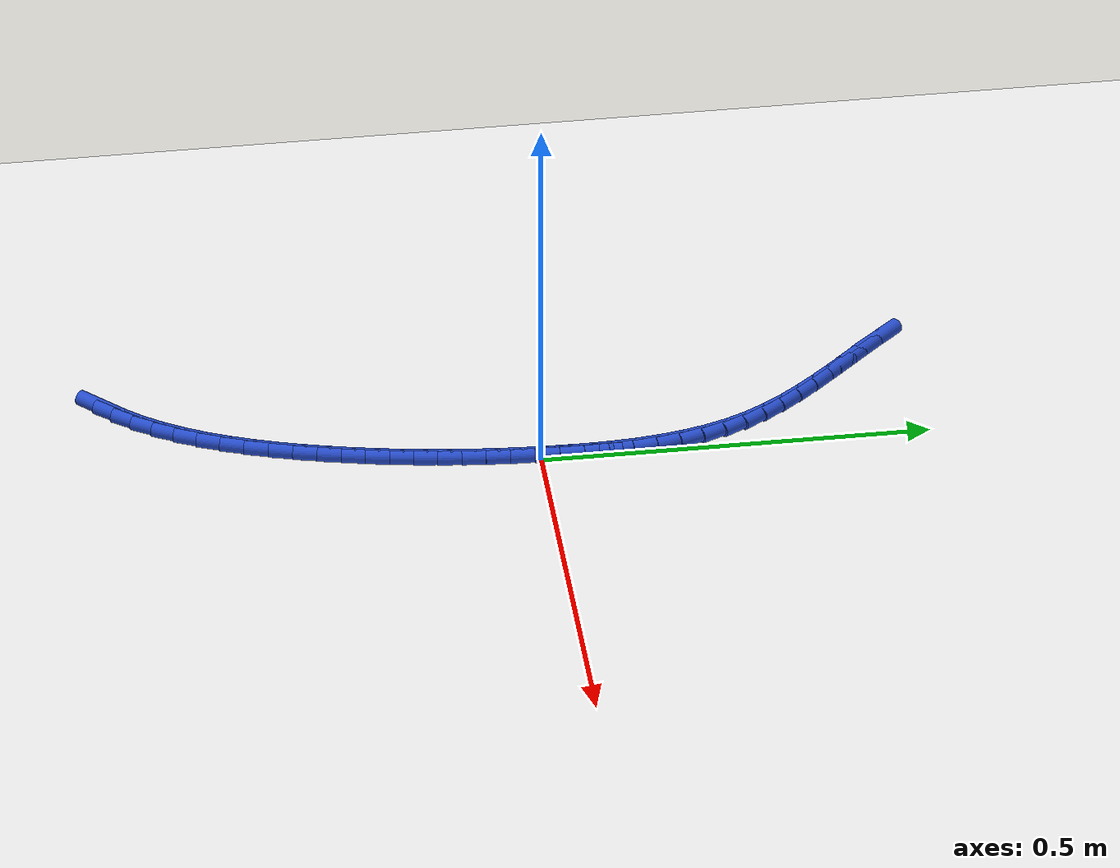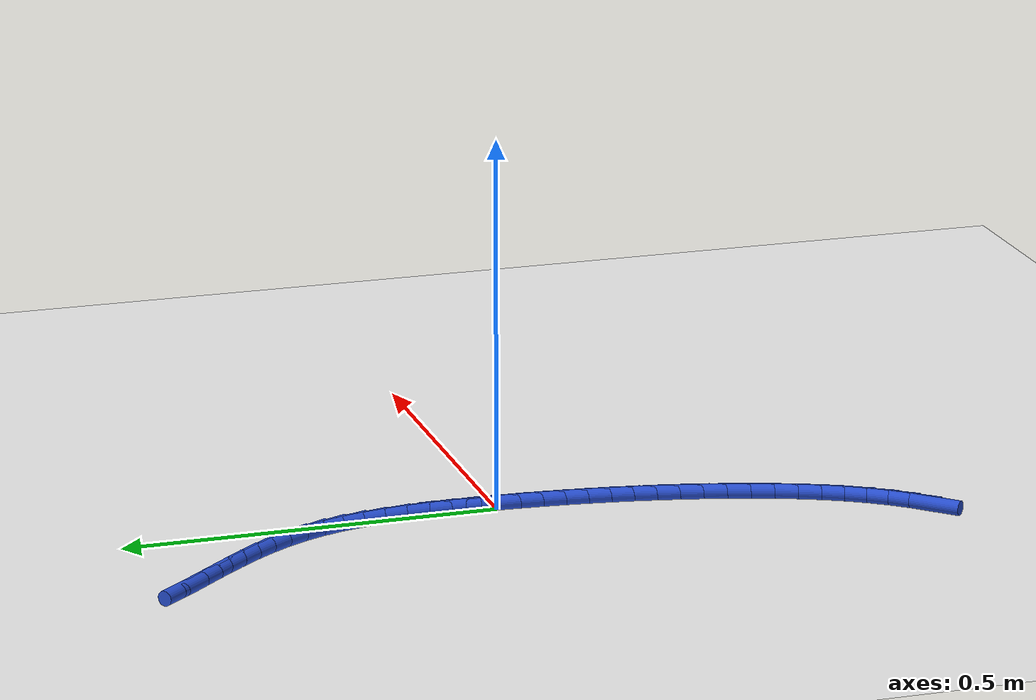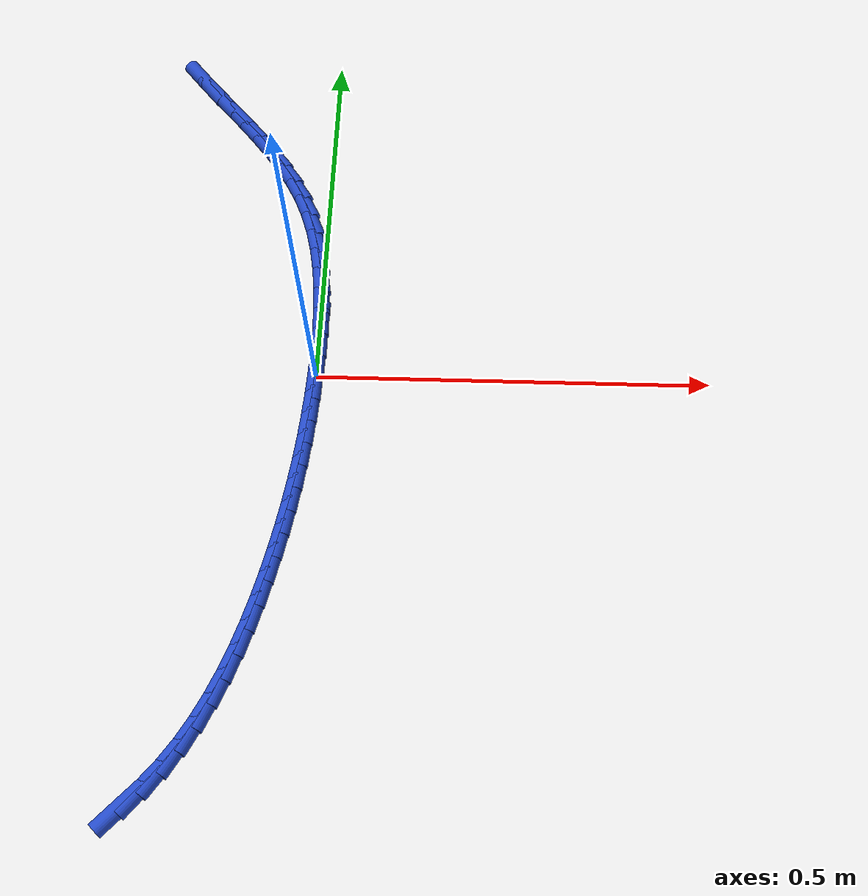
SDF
<sdf version="1.6">
 <world name="default">
  <model name="ground_plane">
   <static>1</static>
   <link name="link">
    <collision name="collision">
     <geometry><plane><normal>0 0 1</normal><size>100 100</size></plane></geometry>
     <surface><friction><ode><mu>100</mu><mu2>50</mu2></ode></friction></surface>
    </collision>
    <visual name="visual">
     <cast_shadows>0</cast_shadows>
     <geometry><plane><normal>0 0 1</normal><size>100 100</size></plane></geometry>
     <material>
      <script><uri>file://media/materials/scripts/gazebo.material</uri><name>Gazebo/WhiteGlow</name></script>
     </material>
    </visual>
   </link>
  </model>
  <model name="line">
   <link name="link_0">
    <pose>2.4936649967166602e-17 5.551115123125783e-17 0.01 0 1.57 1.5411175155558543</pose>
    <collision name="collision">
     <geometry><cylinder><radius>0.01</radius><length>0.08</length></cylinder></geometry>
    </collision>
    <visual name="visual">
     <material>
      <script><name>Gazebo/Blue</name><uri>file://media/materials/scripts/gazebo.material</uri></script>
     </material>
     <geometry><cylinder><radius>0.01</radius><length>0.08</length></cylinder></geometry>
    </visual>
   </link>
   <link name="link_1">
    <pose>0.0009247249539259656 0.03114860030866323 0.01 0 1.57 1.566804197083188</pose>
    <collision name="collision">
     <geometry><cylinder><radius>0.01</radius><length>0.08</length></cylinder></geometry>
    </collision>
    <visual name="visual">
     <material>
      <script><name>Gazebo/Blue</name><uri>file://media/materials/scripts/gazebo.material</uri></script>
     </material>
     <geometry><cylinder><radius>0.01</radius><length>0.08</length></cylinder></geometry>
    </visual>
   </link>
   <link name="link_2">
    <pose>0.0010497529973194828 0.062467066447506464 0.01 0 1.57 -1.541951702423499</pose>
    <collision name="collision">
     <geometry><cylinder><radius>0.01</radius><length>0.08</length></cylinder></geometry>
    </collision>
    <visual name="visual">
     <material>
      <script><name>Gazebo/Blue</name><uri>file://media/materials/scripts/gazebo.material</uri></script>
     </material>
     <geometry><cylinder><radius>0.01</radius><length>0.08</length></cylinder></geometry>
    </visual>
   </link>
   <link name="link_3">
    <pose>0.00014661214302193084 0.09376892546965007 0.01 0 1.57 -1.5014585749569875</pose>
    <collision name="collision">
     <geometry><cylinder><radius>0.01</radius><length>0.08</length></cylinder></geometry>
    </collision>
    <visual name="visual">
     <material>
      <script><name>Gazebo/Blue</name><uri>file://media/materials/scripts/gazebo.material</uri></script>
     </material>
     <geometry><cylinder><radius>0.01</radius><length>0.08</length></cylinder></geometry>
    </visual>
   </link>
   <link name="link_4">
    <pose>-0.002013169596125335 0.12486770442821435 0.01 0 1.57 -1.4526584714905681</pose>
    <collision name="collision">
     <geometry><cylinder><radius>0.01</radius><length>0.08</length></cylinder></geometry>
    </collision>
    <visual name="visual">
     <material>
      <script><name>Gazebo/Blue</name><uri>file://media/materials/scripts/gazebo.material</uri></script>
     </material>
     <geometry><cylinder><radius>0.01</radius><length>0.08</length></cylinder></geometry>
    </visual>
   </link>
   <link name="link_5">
    <pose>-0.005658064207280955 0.15557693037631962 0.01 0 1.57 -1.3948095371145166</pose>
    <collision name="collision">
     <geometry><cylinder><radius>0.01</radius><length>0.08</length></cylinder></geometry>
    </collision>
    <visual name="visual">
     <material>
      <script><name>Gazebo/Blue</name><uri>file://media/materials/scripts/gazebo.material</uri></script>
     </material>
     <geometry><cylinder><radius>0.01</radius><length>0.08</length></cylinder></geometry>
    </visual>
   </link>
   <link name="link_6">
    <pose>-0.011016543677603586 0.18571013036708628 0.01 0 1.57 -1.3271684506925083</pose>
    <collision name="collision">
     <geometry><cylinder><radius>0.01</radius><length>0.08</length></cylinder></geometry>
    </collision>
    <visual name="visual">
     <material>
      <script><name>Gazebo/Blue</name><uri>file://media/materials/scripts/gazebo.material</uri></script>
     </material>
     <geometry><cylinder><radius>0.01</radius><length>0.08</length></cylinder></geometry>
    </visual>
   </link>
   <link name="link_7">
    <pose>-0.018317079994251854 0.21508083145363457 0.01 0 1.57 -1.2491358518005122</pose>
    <collision name="collision">
     <geometry><cylinder><radius>0.01</radius><length>0.08</length></cylinder></geometry>
    </collision>
    <visual name="visual">
     <material>
      <script><name>Gazebo/Blue</name><uri>file://media/materials/scripts/gazebo.material</uri></script>
     </material>
     <geometry><cylinder><radius>0.01</radius><length>0.08</length></cylinder></geometry>
    </visual>
   </link>
   <link name="link_8">
    <pose>-0.027788145144384407 0.24350256068908477 0.01 0 1.57 -1.1608087016327475</pose>
    <collision name="collision">
     <geometry><cylinder><radius>0.01</radius><length>0.08</length></cylinder></geometry>
    </collision>
    <visual name="visual">
     <material>
      <script><name>Gazebo/Blue</name><uri>file://media/materials/scripts/gazebo.material</uri></script>
     </material>
     <geometry><cylinder><radius>0.01</radius><length>0.08</length></cylinder></geometry>
    </visual>
   </link>
   <link name="link_9">
    <pose>-0.0396495886026536 0.2707943079459321 0.01 0 1.57 -1.0729803325183473</pose>
    <collision name="collision">
     <geometry><cylinder><radius>0.01</radius><length>0.08</length></cylinder></geometry>
    </collision>
    <visual name="visual">
     <material>
      <script><name>Gazebo/Blue</name><uri>file://media/materials/scripts/gazebo.material</uri></script>
     </material>
     <geometry><cylinder><radius>0.01</radius><length>0.08</length></cylinder></geometry>
    </visual>
   </link>
   <link name="link_10">
    <pose>-0.05385948461010124 0.29694091160277364 0.01 0 1.57 -0.9986812177546561</pose>
    <collision name="collision">
     <geometry><cylinder><radius>0.01</radius><length>0.08</length></cylinder></geometry>
    </collision>
    <visual name="visual">
     <material>
      <script><name>Gazebo/Blue</name><uri>file://media/materials/scripts/gazebo.material</uri></script>
     </material>
     <geometry><cylinder><radius>0.01</radius><length>0.08</length></cylinder></geometry>
    </visual>
   </link>
   <link name="link_11">
    <pose>-0.07007311293765128 0.3221190464080275 0.01 0 1.57 -0.9389917101842004</pose>
    <collision name="collision">
     <geometry><cylinder><radius>0.01</radius><length>0.08</length></cylinder></geometry>
    </collision>
    <visual name="visual">
     <material>
      <script><name>Gazebo/Blue</name><uri>file://media/materials/scripts/gazebo.material</uri></script>
     </material>
     <geometry><cylinder><radius>0.01</radius><length>0.08</length></cylinder></geometry>
    </visual>
   </link>
   <link name="link_12">
    <pose>-0.08792887246290777 0.34651608205210566 0.01 0 1.57 -0.8936611405011107</pose>
    <collision name="collision">
     <geometry><cylinder><radius>0.01</radius><length>0.08</length></cylinder></geometry>
    </collision>
    <visual name="visual">
     <material>
      <script><name>Gazebo/Blue</name><uri>file://media/materials/scripts/gazebo.material</uri></script>
     </material>
     <geometry><cylinder><radius>0.01</radius><length>0.08</length></cylinder></geometry>
    </visual>
   </link>
   <link name="link_13">
    <pose>-0.10706516206347466 0.37031938822541954 0.01 0 1.57 -0.862152978472473</pose>
    <collision name="collision">
     <geometry><cylinder><radius>0.01</radius><length>0.08</length></cylinder></geometry>
    </collision>
    <visual name="visual">
     <material>
      <script><name>Gazebo/Blue</name><uri>file://media/materials/scripts/gazebo.material</uri></script>
     </material>
     <geometry><cylinder><radius>0.01</radius><length>0.08</length></cylinder></geometry>
    </visual>
   </link>
   <link name="link_14">
    <pose>-0.12712038061695605 0.3937163346183811 0.01 0 1.57 -0.8439149859593875</pose>
    <collision name="collision">
     <geometry><cylinder><radius>0.01</radius><length>0.08</length></cylinder></geometry>
    </collision>
    <visual name="visual">
     <material>
      <script><name>Gazebo/Blue</name><uri>file://media/materials/scripts/gazebo.material</uri></script>
     </material>
     <geometry><cylinder><radius>0.01</radius><length>0.08</length></cylinder></geometry>
    </visual>
   </link>
   <link name="link_15">
    <pose>-0.14773292700095586 0.4168942909214019 0.01 0 1.57 -0.8385407450142685</pose>
    <collision name="collision">
     <geometry><cylinder><radius>0.01</radius><length>0.08</length></cylinder></geometry>
    </collision>
    <visual name="visual">
     <material>
      <script><name>Gazebo/Blue</name><uri>file://media/materials/scripts/gazebo.material</uri></script>
     </material>
     <geometry><cylinder><radius>0.01</radius><length>0.08</length></cylinder></geometry>
    </visual>
   </link>
   <link name="link_16">
    <pose>-0.16854120009307821 0.4400406268248937 0.01 0 1.57 -0.8458482087813703</pose>
    <collision name="collision">
     <geometry><cylinder><radius>0.01</radius><length>0.08</length></cylinder></geometry>
    </collision>
    <visual name="visual">
     <material>
      <script><name>Gazebo/Blue</name><uri>file://media/materials/scripts/gazebo.material</uri></script>
     </material>
     <geometry><cylinder><radius>0.01</radius><length>0.08</length></cylinder></geometry>
    </visual>
   </link>
   <link name="link_17">
    <pose>-0.18918359877092705 0.4633427120192683 0.01 0 1.57 -0.8658972939452431</pose>
    <collision name="collision">
     <geometry><cylinder><radius>0.01</radius><length>0.08</length></cylinder></geometry>
    </collision>
    <visual name="visual">
     <material>
      <script><name>Gazebo/Blue</name><uri>file://media/materials/scripts/gazebo.material</uri></script>
     </material>
     <geometry><cylinder><radius>0.01</radius><length>0.08</length></cylinder></geometry>
    </visual>
   </link>
   <link name="link_221">
    <pose>-0.17023367079889976 -0.5409436593702063 0.01 0 1.57 0.8127667792873643</pose>
    <collision name="collision">
     <geometry><cylinder><radius>0.01</radius><length>0.08</length></cylinder></geometry>
    </collision>
    <visual name="visual">
     <material>
      <script><name>Gazebo/Blue</name><uri>file://media/materials/scripts/gazebo.material</uri></script>
     </material>
     <geometry><cylinder><radius>0.01</radius><length>0.08</length></cylinder></geometry>
    </visual>
   </link>
   <link name="link_222">
    <pose>-0.15035585970410537 -0.5199468881356352 0.01 0 1.57 0.887836513663412</pose>
    <collision name="collision">
     <geometry><cylinder><radius>0.01</radius><length>0.08</length></cylinder></geometry>
    </collision>
    <visual name="visual">
     <material>
      <script><name>Gazebo/Blue</name><uri>file://media/materials/scripts/gazebo.material</uri></script>
     </material>
     <geometry><cylinder><radius>0.01</radius><length>0.08</length></cylinder></geometry>
    </visual>
   </link>
   <link name="link_223">
    <pose>-0.13201179154320652 -0.4973992244944573 0.01 0 1.57 0.9693445972038116</pose>
    <collision name="collision">
     <geometry><cylinder><radius>0.01</radius><length>0.08</length></cylinder></geometry>
    </collision>
    <visual name="visual">
     <material>
      <script><name>Gazebo/Blue</name><uri>file://media/materials/scripts/gazebo.material</uri></script>
     </material>
     <geometry><cylinder><radius>0.01</radius><length>0.08</length></cylinder></geometry>
    </visual>
   </link>
   <link name="link_224">
    <pose>-0.11534165898450877 -0.4731083048959991 0.01 0 1.57 1.0432288996645334</pose>
    <collision name="collision">
     <geometry><cylinder><radius>0.01</radius><length>0.08</length></cylinder></geometry>
    </collision>
    <visual name="visual">
     <material>
      <script><name>Gazebo/Blue</name><uri>file://media/materials/scripts/gazebo.material</uri></script>
     </material>
     <geometry><cylinder><radius>0.01</radius><length>0.08</length></cylinder></geometry>
    </visual>
   </link>
   <link name="link_225">
    <pose>-0.10027254033371719 -0.44724541020504854 0.01 0 1.57 1.107745218140585</pose>
    <collision name="collision">
     <geometry><cylinder><radius>0.01</radius><length>0.08</length></cylinder></geometry>
    </collision>
    <visual name="visual">
     <material>
      <script><name>Gazebo/Blue</name><uri>file://media/materials/scripts/gazebo.material</uri></script>
     </material>
     <geometry><cylinder><radius>0.01</radius><length>0.08</length></cylinder></geometry>
    </visual>
   </link>
   <link name="link_226">
    <pose>-0.08669347413714319 -0.420046729844882 0.01 0 1.57 1.1637527642285186</pose>
    <collision name="collision">
     <geometry><cylinder><radius>0.01</radius><length>0.08</length></cylinder></geometry>
    </collision>
    <visual name="visual">
     <material>
      <script><name>Gazebo/Blue</name><uri>file://media/materials/scripts/gazebo.material</uri></script>
     </material>
     <geometry><cylinder><radius>0.01</radius><length>0.08</length></cylinder></geometry>
    </visual>
   </link>
   <link name="link_227">
    <pose>-0.07449349894109812 -0.391748453238776 0.01 0 1.57 1.2121394721726244</pose>
    <collision name="collision">
     <geometry><cylinder><radius>0.01</radius><length>0.08</length></cylinder></geometry>
    </collision>
    <visual name="visual">
     <material>
      <script><name>Gazebo/Blue</name><uri>file://media/materials/scripts/gazebo.material</uri></script>
     </material>
     <geometry><cylinder><radius>0.01</radius><length>0.08</length></cylinder></geometry>
    </visual>
   </link>
   <link name="link_228">
    <pose>-0.06356165329189335 -0.36258676981000676 0.01 0 1.57 1.2537346798248048</pose>
    <collision name="collision">
     <geometry><cylinder><radius>0.01</radius><length>0.08</length></cylinder></geometry>
    </collision>
    <visual name="visual">
     <material>
      <script><name>Gazebo/Blue</name><uri>file://media/materials/scripts/gazebo.material</uri></script>
     </material>
     <geometry><cylinder><radius>0.01</radius><length>0.08</length></cylinder></geometry>
    </visual>
   </link>
   <link name="link_229">
    <pose>-0.05378697573584022 -0.33279786898185093 0.01 0 1.57 1.2892636854114632</pose>
    <collision name="collision">
     <geometry><cylinder><radius>0.01</radius><length>0.08</length></cylinder></geometry>
    </collision>
    <visual name="visual">
     <material>
      <script><name>Gazebo/Blue</name><uri>file://media/materials/scripts/gazebo.material</uri></script>
     </material>
     <geometry><cylinder><radius>0.01</radius><length>0.08</length></cylinder></geometry>
    </visual>
   </link>
   <link name="link_230">
    <pose>-0.04505850481924985 -0.30261794017758376 0.01 0 1.57 1.31932723618748</pose>
    <collision name="collision">
     <geometry><cylinder><radius>0.01</radius><length>0.08</length></cylinder></geometry>
    </collision>
    <visual name="visual">
     <material>
      <script><name>Gazebo/Blue</name><uri>file://media/materials/scripts/gazebo.material</uri></script>
     </material>
     <geometry><cylinder><radius>0.01</radius><length>0.08</length></cylinder></geometry>
    </visual>
   </link>
   <link name="link_231">
    <pose>-0.037265279088434085 -0.2722831728204835 0.01 0 1.57 1.3445336227494784</pose>
    <collision name="collision">
     <geometry><cylinder><radius>0.01</radius><length>0.08</length></cylinder></geometry>
    </collision>
    <visual name="visual">
     <material>
      <script><name>Gazebo/Blue</name><uri>file://media/materials/scripts/gazebo.material</uri></script>
     </material>
     <geometry><cylinder><radius>0.01</radius><length>0.08</length></cylinder></geometry>
    </visual>
   </link>
   <link name="link_232">
    <pose>-0.030298830157146794 -0.2420211850297231 0.01 0 1.57 1.3676489783972516</pose>
    <collision name="collision">
     <geometry><cylinder><radius>0.01</radius><length>0.08</length></cylinder></geometry>
    </collision>
    <visual name="visual">
     <material>
      <script><name>Gazebo/Blue</name><uri>file://media/materials/scripts/gazebo.material</uri></script>
     </material>
     <geometry><cylinder><radius>0.01</radius><length>0.08</length></cylinder></geometry>
    </visual>
   </link>
   <link name="link_233">
    <pose>-0.024095408068493036 -0.21190585048484484 0.01 0 1.57 1.390752685545762</pose>
    <collision name="collision">
     <geometry><cylinder><radius>0.01</radius><length>0.08</length></cylinder></geometry>
    </collision>
    <visual name="visual">
     <material>
      <script><name>Gazebo/Blue</name><uri>file://media/materials/scripts/gazebo.material</uri></script>
     </material>
     <geometry><cylinder><radius>0.01</radius><length>0.08</length></cylinder></geometry>
    </visual>
   </link>
   <link name="link_234">
    <pose>-0.018629923338093924 -0.18187812601725556 0.01 0 1.57 1.4137404217260625</pose>
    <collision name="collision">
     <geometry><cylinder><radius>0.01</radius><length>0.08</length></cylinder></geometry>
    </collision>
    <visual name="visual">
     <material>
      <script><name>Gazebo/Blue</name><uri>file://media/materials/scripts/gazebo.material</uri></script>
     </material>
     <geometry><cylinder><radius>0.01</radius><length>0.08</length></cylinder></geometry>
    </visual>
   </link>
   <link name="link_235">
    <pose>-0.013878559903823633 -0.15187459036204853 0.01 0 1.57 1.4364348518326755</pose>
    <collision name="collision">
     <geometry><cylinder><radius>0.01</radius><length>0.08</length></cylinder></geometry>
    </collision>
    <visual name="visual">
     <material>
      <script><name>Gazebo/Blue</name><uri>file://media/materials/scripts/gazebo.material</uri></script>
     </material>
     <geometry><cylinder><radius>0.01</radius><length>0.08</length></cylinder></geometry>
    </visual>
   </link>
   <link name="link_236">
    <pose>-0.009817501703556313 -0.1218318222543166 0.01 0 1.57 1.4586622429887726</pose>
    <collision name="collision">
     <geometry><cylinder><radius>0.01</radius><length>0.08</length></cylinder></geometry>
    </collision>
    <visual name="visual">
     <material>
      <script><name>Gazebo/Blue</name><uri>file://media/materials/scripts/gazebo.material</uri></script>
     </material>
     <geometry><cylinder><radius>0.01</radius><length>0.08</length></cylinder></geometry>
    </visual>
   </link>
   <link name="link_237">
    <pose>-0.006422932675166132 -0.09168640042915281 0.01 0 1.57 1.480257332866937</pose>
    <collision name="collision">
     <geometry><cylinder><radius>0.01</radius><length>0.08</length></cylinder></geometry>
    </collision>
    <visual name="visual">
     <material>
      <script><name>Gazebo/Blue</name><uri>file://media/materials/scripts/gazebo.material</uri></script>
     </material>
     <geometry><cylinder><radius>0.01</radius><length>0.08</length></cylinder></geometry>
    </visual>
   </link>
   <link name="link_238">
    <pose>-0.0036710367565271833 -0.06137490362164942 0.01 0 1.57 1.5010677247904298</pose>
    <collision name="collision">
     <geometry><cylinder><radius>0.01</radius><length>0.08</length></cylinder></geometry>
    </collision>
    <visual name="visual">
     <material>
      <script><name>Gazebo/Blue</name><uri>file://media/materials/scripts/gazebo.material</uri></script>
     </material>
     <geometry><cylinder><radius>0.01</radius><length>0.08</length></cylinder></geometry>
    </visual>
   </link>
   <link name="link_239">
    <pose>-0.0015379978855137681 -0.030833910566901053 0.01 0 1.57 1.520957554038462</pose>
    <collision name="collision">
     <geometry><cylinder><radius>0.01</radius><length>0.08</length></cylinder></geometry>
    </collision>
    <visual name="visual">
     <material>
      <script><name>Gazebo/Blue</name><uri>file://media/materials/scripts/gazebo.material</uri></script>
     </material>
     <geometry><cylinder><radius>0.01</radius><length>0.08</length></cylinder></geometry>
    </visual>
   </link>
   <link name="link_240">
    <pose>2.8406096919120216e-17 7.632783294297951e-17 0.01 0 1.57 1.5398102477755244</pose>
    <collision name="collision">
     <geometry><cylinder><radius>0.01</radius><length>0.08</length></cylinder></geometry>
    </collision>
    <visual name="visual">
     <material>
      <script><name>Gazebo/Blue</name><uri>file://media/materials/scripts/gazebo.material</uri></script>
     </material>
     <geometry><cylinder><radius>0.01</radius><length>0.08</length></cylinder></geometry>
    </visual>
   </link>
   <link name="link_241">
    <pose>0.0009667729621400472 0.031190249343960925 0.01 0 1.57 1.5575302915175795</pose>
    <collision name="collision">
     <geometry><cylinder><radius>0.01</radius><length>0.08</length></cylinder></geometry>
    </collision>
    <visual name="visual">
     <material>
      <script><name>Gazebo/Blue</name><uri>file://media/materials/scripts/gazebo.material</uri></script>
     </material>
     <geometry><cylinder><radius>0.01</radius><length>0.08</length></cylinder></geometry>
    </visual>
   </link>
   <link name="link_242">
    <pose>0.0013861370630321292 0.06280025872988845 0.01 0 1.57 1.5487277548271867</pose>
    <collision name="collision">
     <geometry><cylinder><radius>0.01</radius><length>0.08</length></cylinder></geometry>
    </collision>
    <visual name="visual">
     <material>
      <script><name>Gazebo/Blue</name><uri>file://media/materials/scripts/gazebo.material</uri></script>
     </material>
     <geometry><cylinder><radius>0.01</radius><length>0.08</length></cylinder></geometry>
    </visual>
   </link>
  </model>
 </world>
</sdf>
